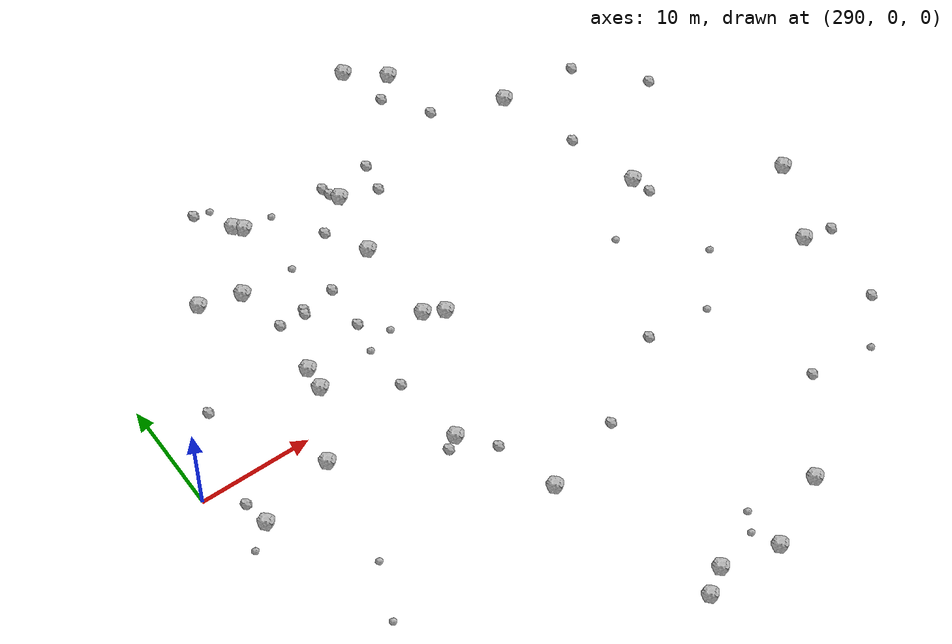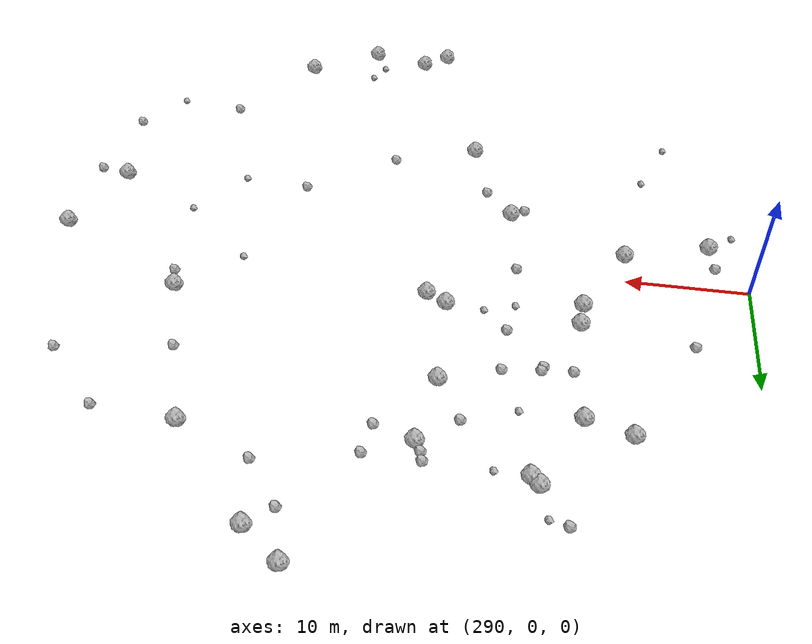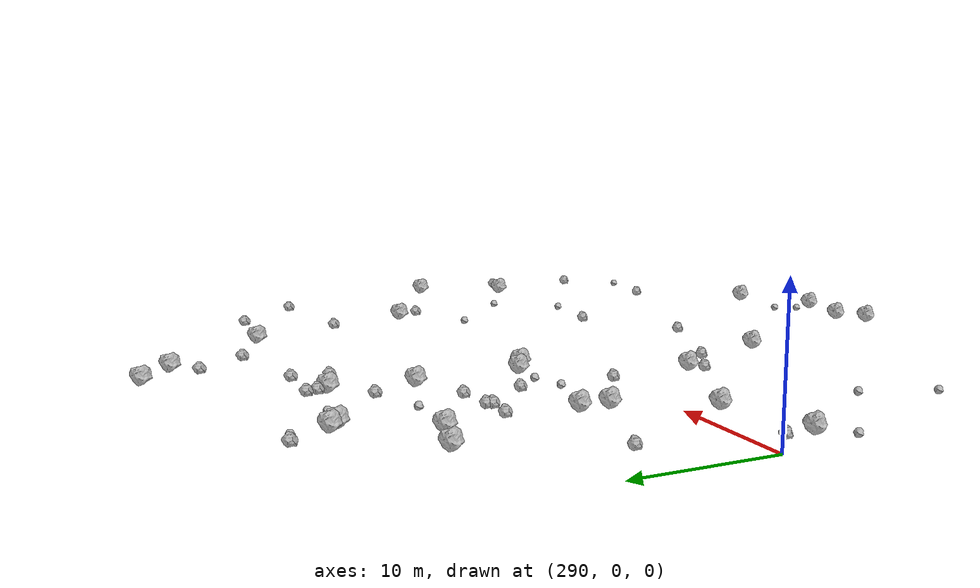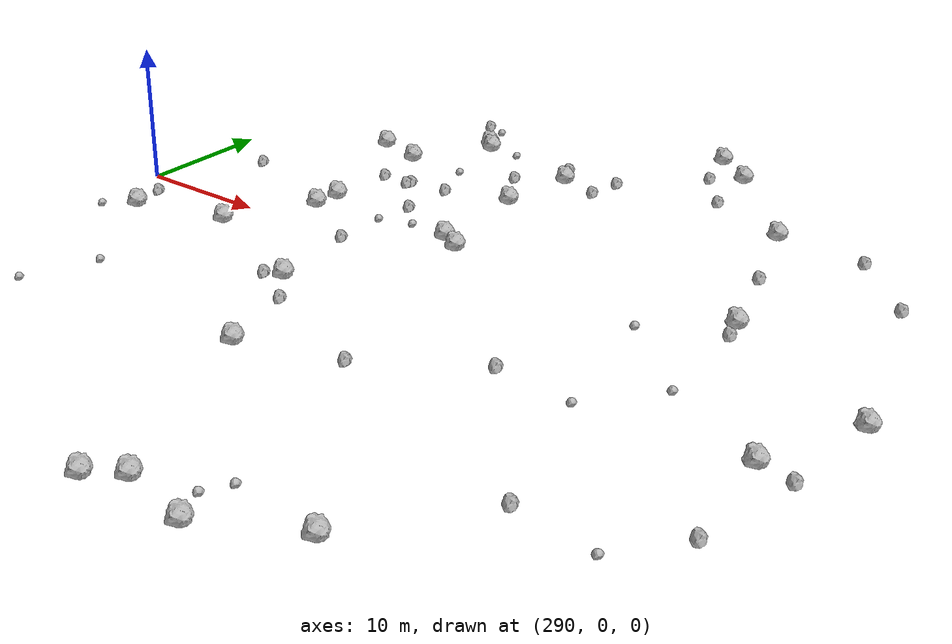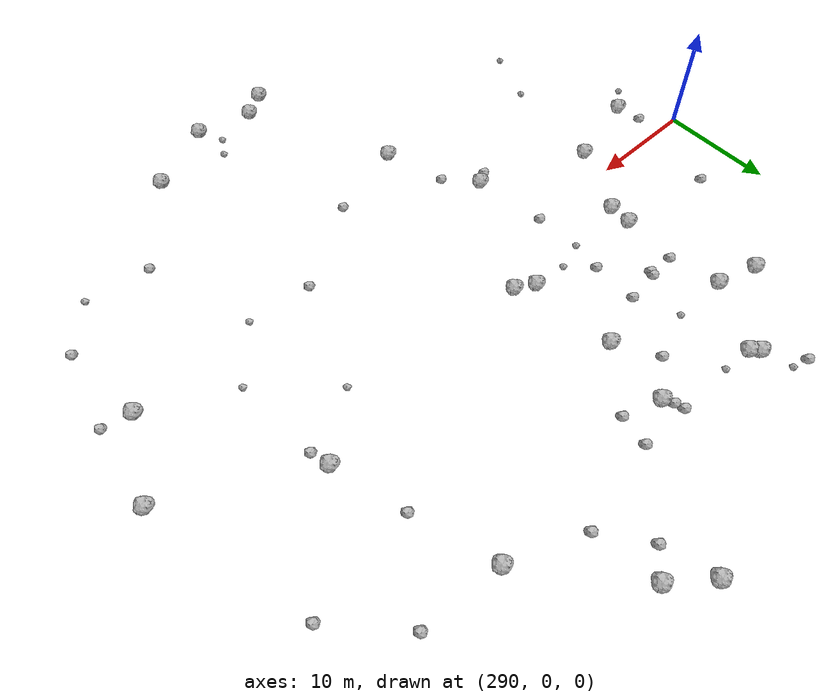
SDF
<sdf version="1.6">
 <world name="default">
  <include><uri>model://sun</uri></include>
  <model name="rock1_8_3">
   <include><uri>model://rock1</uri><pose>303.5678323439688 5.463971314489157 0.5 0 0 0</pose></include>
  </model>
  <model name="rock1_8_4">
   <include><uri>model://rock1</uri><pose>313.6465139967064 -14.992972920134576 0.5 0 0 0</pose></include>
  </model>
  <model name="rock1_8_5">
   <include><uri>model://rock1</uri><pose>306.119768159328 20.881075394902474 0.5 0 0 0</pose></include>
  </model>
  <model name="rock1_8_6">
   <include><uri>model://rock1</uri><pose>336.51181692866703 5.593074764107506 0.5 0 0 0</pose></include>
  </model>
  <model name="rock1_8_7">
   <include><uri>model://rock1</uri><pose>344.6571105956484 -7.513832876846223 0.5 0 0 0</pose></include>
  </model>
  <model name="rock1_8_8">
   <include><uri>model://rock1</uri><pose>317.8112629936366 -29.882656373662083 0.5 0 0 0</pose></include>
  </model>
  <model name="rock1_8_9">
   <include><uri>model://rock1</uri><pose>299.5488710770865 15.820066231145745 0.5 0 0 0</pose></include>
  </model>
  <model name="rock1_8_10">
   <include><uri>model://rock1</uri><pose>347.77158784487676 -0.6365155430779232 0.5 0 0 0</pose></include>
  </model>
  <model name="rock1_8_11">
   <include><uri>model://rock1</uri><pose>314.32215850670536 4.648629118239199 0.5 0 0 0</pose></include>
  </model>
  <model name="rock1_8_12">
   <include><uri>model://rock1</uri><pose>315.1179124537709 18.32511206381256 0.5 0 0 0</pose></include>
  </model>
  <model name="rock1_8_13">
   <include><uri>model://rock1</uri><pose>319.9536952298088 -28.405343562691957 0.5 0 0 0</pose></include>
  </model>
  <model name="rock1_8_14">
   <include><uri>model://rock1</uri><pose>322.66575155528284 29.177591413097254 0.5 0 0 0</pose></include>
  </model>
  <model name="rock1_8_15">
   <include><uri>model://rock1</uri><pose>324.9622853491538 -29.50405147874219 0.5 0 0 0</pose></include>
  </model>
  <model name="rock1_8_16">
   <include><uri>model://rock1</uri><pose>314.11694517134185 12.479501724279423 0.5 0 0 0</pose></include>
  </model>
  <model name="rock1_8_17">
   <include><uri>model://rock1</uri><pose>293.0693893546222 -4.634785789651076 0.5 0 0 0</pose></include>
  </model>
  <model name="rock1_8_18">
   <include><uri>model://rock1</uri><pose>309.796041713663 -6.66237889108891 0.5 0 0 0</pose></include>
  </model>
  <model name="rock1_8_19">
   <include><uri>model://rock1</uri><pose>303.40556550267996 3.388163604257649 0.5 0 0 0</pose></include>
  </model>
  <model name="rock1_8_20">
   <include><uri>model://rock1</uri><pose>303.1630644200294 14.74709027674917 0.5 0 0 0</pose></include>
  </model>
  <model name="rock1_8_21">
   <include><uri>model://rock1</uri><pose>331.01982969134644 -26.24988498085099 0.5 0 0 0</pose></include>
  </model>
  <model name="rock1_8_22">
   <include><uri>model://rock1</uri><pose>306.7387515582792 20.25032579926065 0.5 0 0 0</pose></include>
  </model>
  <model name="rock1_8_23">
   <include><uri>model://rock1</uri><pose>315.9709446424281 3.7273172209053556 0.5 0 0 0</pose></include>
  </model>
  <model name="rock1_8_24">
   <include><uri>model://rock1</uri><pose>325.7254755399321 26.73420827635286 0.5 0 0 0</pose></include>
  </model>
  <model name="rock1_8_25">
   <include><uri>model://rock1</uri><pose>300.0770485402636 -2.7597682788579263 0.5 0 0 0</pose></include>
  </model>
  <model name="rock1_8_26">
   <include><uri>model://rock1</uri><pose>332.5212113731952 18.87737826872589 0.5 0 0 0</pose></include>
  </model>
  <model name="rock2_8_0">
   <include><uri>model://rock2</uri><pose>347.12198562090816 -7.985944944150219 0.3 0 0 0</pose></include>
  </model>
  <model name="rock2_8_1">
   <include><uri>model://rock2</uri><pose>343.858645239711 13.327434796645463 0.3 0 0 0</pose></include>
  </model>
  <model name="rock2_8_2">
   <include><uri>model://rock2</uri><pose>306.4262013071885 10.610916262742087 0.3 0 0 0</pose></include>
  </model>
  <model name="rock2_8_3">
   <include><uri>model://rock2</uri><pose>312.07678749573626 -9.332865323840341 0.3 0 0 0</pose></include>
  </model>
  <model name="rock2_8_4">
   <include><uri>model://rock2</uri><pose>306.27524196036563 10.21341040164058 0.3 0 0 0</pose></include>
  </model>
  <model name="rock2_8_5">
   <include><uri>model://rock2</uri><pose>336.9497291599355 3.9249116229567846 0.3 0 0 0</pose></include>
  </model>
  <model name="rock2_8_6">
   <include><uri>model://rock2</uri><pose>320.73041136698976 -12.760246981195035 0.3 0 0 0</pose></include>
  </model>
  <model name="rock2_8_7">
   <include><uri>model://rock2</uri><pose>323.7734080101678 25.04888918710671 0.3 0 0 0</pose></include>
  </model>
  <model name="rock2_8_8">
   <include><uri>model://rock2</uri><pose>339.1900798016782 18.338608807004846 0.3 0 0 0</pose></include>
  </model>
  <model name="rock2_8_9">
   <include><uri>model://rock2</uri><pose>318.2861441069578 17.269883541544267 0.3 0 0 0</pose></include>
  </model>
  <model name="rock2_8_10">
   <include><uri>model://rock2</uri><pose>318.7672674271178 19.859386480454837 0.3 0 0 0</pose></include>
  </model>
  <model name="rock2_8_11">
   <include><uri>model://rock2</uri><pose>314.5977579417077 19.1896215545229 0.3 0 0 0</pose></include>
  </model>
  <model name="rock2_8_12">
   <include><uri>model://rock2</uri><pose>334.7251718679886 11.971529796538107 0.3 0 0 0</pose></include>
  </model>
  <model name="rock2_8_13">
   <include><uri>model://rock2</uri><pose>328.1282522784766 -7.905602555290553 0.3 0 0 0</pose></include>
  </model>
  <model name="rock2_8_14">
   <include><uri>model://rock2</uri><pose>308.6467848890951 -7.304763112278071 0.3 0 0 0</pose></include>
  </model>
  <model name="rock2_8_15">
   <include><uri>model://rock2</uri><pose>309.2854065040252 6.873034505235466 0.3 0 0 0</pose></include>
  </model>
  <model name="rock2_8_16">
   <include><uri>model://rock2</uri><pose>292.6587243017365 -2.2343985975919054 0.3 0 0 0</pose></include>
  </model>
  <model name="rock2_8_17">
   <include><uri>model://rock2</uri><pose>314.39363934142614 19.98462415719318 0.3 0 0 0</pose></include>
  </model>
  <model name="rock2_8_18">
   <include><uri>model://rock2</uri><pose>308.92028253202966 -0.017959829929047544 0.3 0 0 0</pose></include>
  </model>
  <model name="rock2_8_19">
   <include><uri>model://rock2</uri><pose>312.06674458115265 16.060074816290587 0.3 0 0 0</pose></include>
  </model>
  <model name="rock2_8_20">
   <include><uri>model://rock2</uri><pose>345.6541133467586 -15.179647834395556 0.3 0 0 0</pose></include>
  </model>
  <model name="rock2_8_21">
   <include><uri>model://rock2</uri><pose>303.9804088488868 23.85292628309739 0.3 0 0 0</pose></include>
  </model>
  <model name="rock2_8_22">
   <include><uri>model://rock2</uri><pose>303.99062963975786 10.410246184830264 0.3 0 0 0</pose></include>
  </model>
  <model name="rock2_8_23">
   <include><uri>model://rock2</uri><pose>336.8733724965188 -18.440133415082833 0.3 0 0 0</pose></include>
  </model>
  <model name="rock2_8_24">
   <include><uri>model://rock2</uri><pose>294.7098028309244 6.6616916523687095 0.3 0 0 0</pose></include>
  </model>
  <model name="rock2_8_25">
   <include><uri>model://rock2</uri><pose>309.4251616208532 10.911996557128482 0.3 0 0 0</pose></include>
  </model>
  <model name="rock2_8_26">
   <include><uri>model://rock2</uri><pose>326.46558155929245 21.4197305839133 0.3 0 0 0</pose></include>
  </model>
  <model name="rock3_8_0">
   <include><uri>model://rock3</uri><pose>305.3397837762987 23.444644663045175 0.2 0 0 0</pose></include>
  </model>
  <model name="rock3_8_1">
   <include><uri>model://rock3</uri><pose>298.4182030995996 -12.569076615546294 0.2 0 0 0</pose></include>
  </model>
  <model name="rock3_8_2">
   <include><uri>model://rock3</uri><pose>307.85881415510215 14.581853116678595 0.2 0 0 0</pose></include>
  </model>
  <model name="rock3_8_3">
   <include><uri>model://rock3</uri><pose>342.41805333043175 -19.14896979406525 0.2 0 0 0</pose></include>
  </model>
  <model name="rock3_8_4">
   <include><uri>model://rock3</uri><pose>308.7319306031452 4.076318422844729 0.2 0 0 0</pose></include>
  </model>
  <model name="rock3_8_5">
   <include><uri>model://rock3</uri><pose>333.7082066735716 -8.44757350191161 0.2 0 0 0</pose></include>
  </model>
  <model name="rock3_8_6">
   <include><uri>model://rock3</uri><pose>323.8007729211559 -27.2638103492541 0.2 0 0 0</pose></include>
  </model>
  <model name="rock3_8_7">
   <include><uri>model://rock3</uri><pose>290.97273991819156 -6.2352358908070755 0.2 0 0 0</pose></include>
  </model>
  <model name="rock3_8_8">
   <include><uri>model://rock3</uri><pose>309.30796453557224 20.02753731503561 0.2 0 0 0</pose></include>
  </model>
  <model name="rock3_8_9">
   <include><uri>model://rock3</uri><pose>337.47733591138075 -3.8555736088317296 0.2 0 0 0</pose></include>
  </model>
  <model name="rock3_8_10">
   <include><uri>model://rock3</uri><pose>324.74418009900955 -25.589353068603202 0.2 0 0 0</pose></include>
  </model>
  <model name="rock3_8_11">
   <include><uri>model://rock3</uri><pose>331.6588892065549 1.4885786585855563 0.2 0 0 0</pose></include>
  </model>
  <model name="rock3_8_12">
   <include><uri>model://rock3</uri><pose>311.1951362924985 4.852507225413632 0.2 0 0 0</pose></include>
  </model>
  <model name="rock3_8_13">
   <include><uri>model://rock3</uri><pose>296.3509196181494 -17.586813507818636 0.2 0 0 0</pose></include>
  </model>
 </world>
</sdf>
